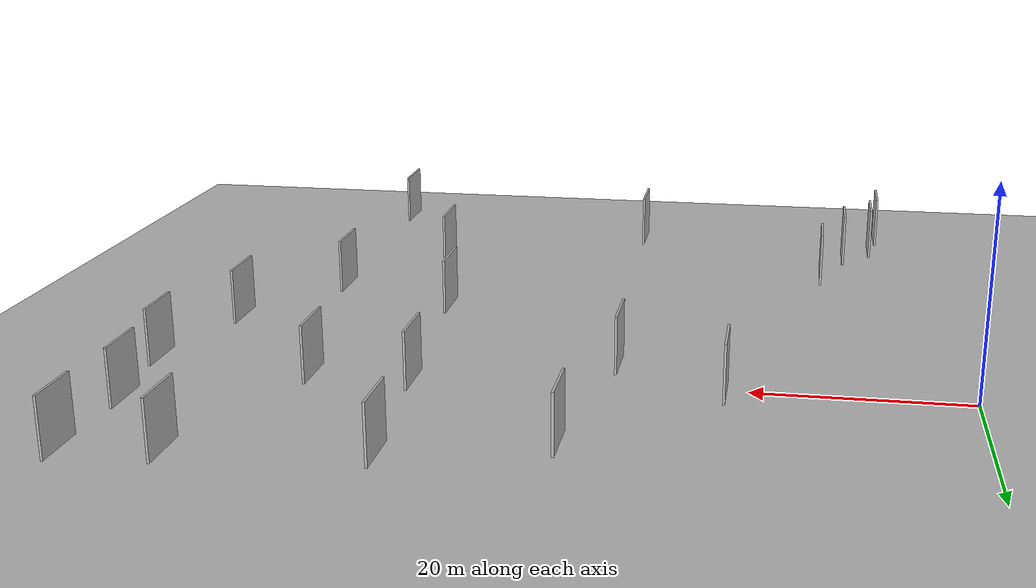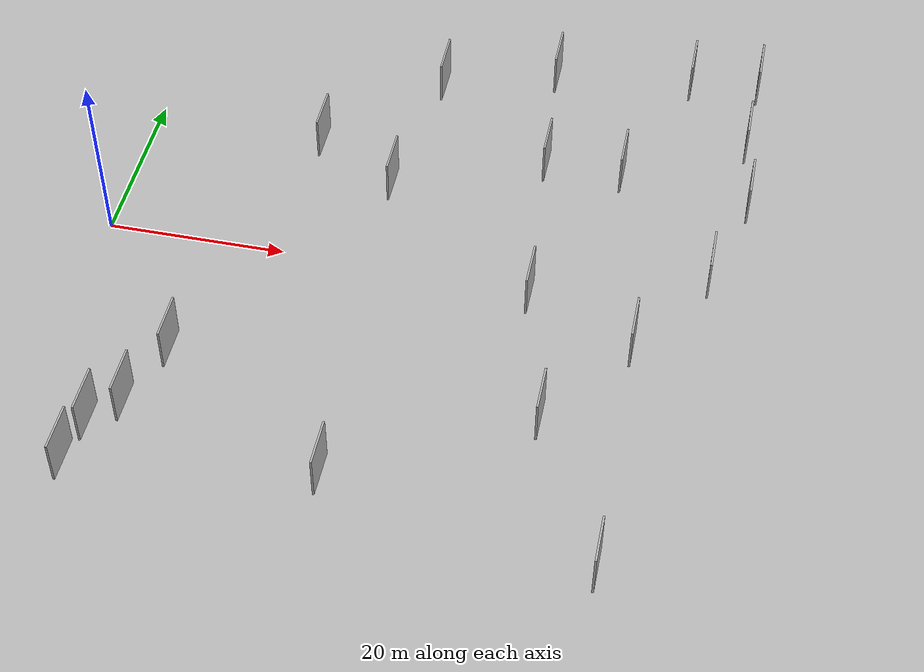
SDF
<?xml version="1.0" encoding="utf-8"?>

<sdf version="1.6">

   <world name="default">

      <gui fullscreen="0">

         <camera name="user_camera">

            <pose>-15 0 4.57585 0 0 0</pose>

            <view_controller>orbit</view_controller>

         </camera>

      </gui>

      <scene>

         <sky>

           <clouds>

             <speed>12</speed>

           </clouds>

         </sky>

         <ambient>0.4 0.4 0.4 1</ambient>

         <background>0.7 0.7 0.7 1</background>

         <shadows>1</shadows>

      </scene>

      <gravity>0 0 -9.8066</gravity>

      <magnetic_field>6e-06 2.3e-05 -4.2e-05</magnetic_field>

      <physics default="0" name="default_physics" type="ode">

         <ode>

            <solver>

               <type>quick</type>

               <iters>10</iters>

               <sor>1.0</sor>

               <use_dynamic_moi_rescaling>0</use_dynamic_moi_rescaling>

            </solver>

            <constraints>

               <cfm>0</cfm>

               <erp>0.2</erp>

               <contact_max_correcting_vel>100</contact_max_correcting_vel>

               <contact_surface_layer>0.001</contact_surface_layer>

            </constraints>

         </ode>

         <max_step_size>0.004</max_step_size>

         <real_time_factor>1</real_time_factor>

         <real_time_update_rate>250</real_time_update_rate>

      </physics>

      <light name="sun" type="directional">

         <cast_shadows>1</cast_shadows>

         <pose>0 0 10 0 0 0</pose>

         <diffuse>0.8 0.8 0.8 1</diffuse>

         <specular>0.2 0.2 0.2 1</specular>

         <attenuation>

            <range>1000</range>

            <constant>0.9</constant>

            <linear>0.01</linear>

            <quadratic>0.001</quadratic>

         </attenuation>

         <direction>-0.5 0.1 -0.9</direction>

      </light>

      <include>

         <name>ground_plane_1</name>

         <uri>model://HANNAS_ground_plane</uri>

         <pose>0 0 0  0 0 0</pose>

      </include>

      <include>

         <name>ground_plane_2</name>

         <uri>model://HANNAS_ground_plane</uri>

         <pose>100 0 0  0 0 0</pose>

      </include>

      <model name="HANNAS_wall_1">

         <static>1</static>

         <pose frame="">60.2426 -37.7055 5.0 0.000000 0.000000 1.570796</pose>

         <link name="link">

            <pose frame="">0 0 2.50 0 0 0</pose>

            <collision name="collision">

               <geometry>

                  <box>

                     <size>5.00 0.2 5.00</size>

                  </box>

               </geometry>

               <max_contacts>10</max_contacts>

               <surface>

                  <contact>

                     <ode/>

                  </contact>

                  <bounce/>

                  <friction>

                     <torsional>

                        <ode/>

                     </torsional>

                     <ode/>

                  </friction>

               </surface>

            </collision>

            <visual name="visual">

               <cast_shadows>0</cast_shadows>

               <geometry>

                  <box>

                     <size>5.00 0.2 5.00</size>

                  </box>

               </geometry>

               <material>

                  <script>

                     <uri>model://HANNAS_wall/materials/scripts</uri>

                     <uri>model://HANNAS_wall/materials/textures</uri>

                     <name>vrc/HANNAS_wall</name>

                  </script>

               </material>

            </visual>

            <self_collide>0</self_collide>

            <enable_wind>0</enable_wind>

            <kinematic>0</kinematic>

         </link>

      </model>

      <model name="HANNAS_wall_2">

         <static>1</static>

         <pose frame="">52.1863 -21.4854 5.0 0.000000 0.000000 1.570796</pose>

         <link name="link">

            <pose frame="">0 0 2.50 0 0 0</pose>

            <collision name="collision">

               <geometry>

                  <box>

                     <size>5.00 0.2 5.00</size>

                  </box>

               </geometry>

               <max_contacts>10</max_contacts>

               <surface>

                  <contact>

                     <ode/>

                  </contact>

                  <bounce/>

                  <friction>

                     <torsional>

                        <ode/>

                     </torsional>

                     <ode/>

                  </friction>

               </surface>

            </collision>

            <visual name="visual">

               <cast_shadows>0</cast_shadows>

               <geometry>

                  <box>

                     <size>5.00 0.2 5.00</size>

                  </box>

               </geometry>

               <material>

                  <script>

                     <uri>model://HANNAS_wall/materials/scripts</uri>

                     <uri>model://HANNAS_wall/materials/textures</uri>

                     <name>vrc/HANNAS_wall</name>

                  </script>

               </material>

            </visual>

            <self_collide>0</self_collide>

            <enable_wind>0</enable_wind>

            <kinematic>0</kinematic>

         </link>

      </model>

      <model name="HANNAS_wall_3">

         <static>1</static>

         <pose frame="">55.3209 14.2574 5.0 0.000000 0.000000 1.570796</pose>

         <link name="link">

            <pose frame="">0 0 2.50 0 0 0</pose>

            <collision name="collision">

               <geometry>

                  <box>

                     <size>5.00 0.2 5.00</size>

                  </box>

               </geometry>

               <max_contacts>10</max_contacts>

               <surface>

                  <contact>

                     <ode/>

                  </contact>

                  <bounce/>

                  <friction>

                     <torsional>

                        <ode/>

                     </torsional>

                     <ode/>

                  </friction>

               </surface>

            </collision>

            <visual name="visual">

               <cast_shadows>0</cast_shadows>

               <geometry>

                  <box>

                     <size>5.00 0.2 5.00</size>

                  </box>

               </geometry>

               <material>

                  <script>

                     <uri>model://HANNAS_wall/materials/scripts</uri>

                     <uri>model://HANNAS_wall/materials/textures</uri>

                     <name>vrc/HANNAS_wall</name>

                  </script>

               </material>

            </visual>

            <self_collide>0</self_collide>

            <enable_wind>0</enable_wind>

            <kinematic>0</kinematic>

         </link>

      </model>

      <model name="HANNAS_wall_4">

         <static>1</static>

         <pose frame="">13.8937 -19.9973 5.0 0.000000 0.000000 1.570796</pose>

         <link name="link">

            <pose frame="">0 0 2.50 0 0 0</pose>

            <collision name="collision">

               <geometry>

                  <box>

                     <size>5.00 0.2 5.00</size>

                  </box>

               </geometry>

               <max_contacts>10</max_contacts>

               <surface>

                  <contact>

                     <ode/>

                  </contact>

                  <bounce/>

                  <friction>

                     <torsional>

                        <ode/>

                     </torsional>

                     <ode/>

                  </friction>

               </surface>

            </collision>

            <visual name="visual">

               <cast_shadows>0</cast_shadows>

               <geometry>

                  <box>

                     <size>5.00 0.2 5.00</size>

                  </box>

               </geometry>

               <material>

                  <script>

                     <uri>model://HANNAS_wall/materials/scripts</uri>

                     <uri>model://HANNAS_wall/materials/textures</uri>

                     <name>vrc/HANNAS_wall</name>

                  </script>

               </material>

            </visual>

            <self_collide>0</self_collide>

            <enable_wind>0</enable_wind>

            <kinematic>0</kinematic>

         </link>

      </model>

      <model name="HANNAS_wall_5">

         <static>1</static>

         <pose frame="">68.3502 21.7502 5.0 0.000000 0.000000 1.570796</pose>

         <link name="link">

            <pose frame="">0 0 2.50 0 0 0</pose>

            <collision name="collision">

               <geometry>

                  <box>

                     <size>5.00 0.2 5.00</size>

                  </box>

               </geometry>

               <max_contacts>10</max_contacts>

               <surface>

                  <contact>

                     <ode/>

                  </contact>

                  <bounce/>

                  <friction>

                     <torsional>

                        <ode/>

                     </torsional>

                     <ode/>

                  </friction>

               </surface>

            </collision>

            <visual name="visual">

               <cast_shadows>0</cast_shadows>

               <geometry>

                  <box>

                     <size>5.00 0.2 5.00</size>

                  </box>

               </geometry>

               <material>

                  <script>

                     <uri>model://HANNAS_wall/materials/scripts</uri>

                     <uri>model://HANNAS_wall/materials/textures</uri>

                     <name>vrc/HANNAS_wall</name>

                  </script>

               </material>

            </visual>

            <self_collide>0</self_collide>

            <enable_wind>0</enable_wind>

            <kinematic>0</kinematic>

         </link>

      </model>

      <model name="HANNAS_wall_6">

         <static>1</static>

         <pose frame="">59.8071 -10.4282 5.0 0.000000 0.000000 1.570796</pose>

         <link name="link">

            <pose frame="">0 0 2.50 0 0 0</pose>

            <collision name="collision">

               <geometry>

                  <box>

                     <size>5.00 0.2 5.00</size>

                  </box>

               </geometry>

               <max_contacts>10</max_contacts>

               <surface>

                  <contact>

                     <ode/>

                  </contact>

                  <bounce/>

                  <friction>

                     <torsional>

                        <ode/>

                     </torsional>

                     <ode/>

                  </friction>

               </surface>

            </collision>

            <visual name="visual">

               <cast_shadows>0</cast_shadows>

               <geometry>

                  <box>

                     <size>5.00 0.2 5.00</size>

                  </box>

               </geometry>

               <material>

                  <script>

                     <uri>model://HANNAS_wall/materials/scripts</uri>

                     <uri>model://HANNAS_wall/materials/textures</uri>

                     <name>vrc/HANNAS_wall</name>

                  </script>

               </material>

            </visual>

            <self_collide>0</self_collide>

            <enable_wind>0</enable_wind>

            <kinematic>0</kinematic>

         </link>

      </model>

      <model name="HANNAS_wall_7">

         <static>1</static>

         <pose frame="">48.3433 -5.4660 5.0 0.000000 0.000000 1.570796</pose>

         <link name="link">

            <pose frame="">0 0 2.50 0 0 0</pose>

            <collision name="collision">

               <geometry>

                  <box>

                     <size>5.00 0.2 5.00</size>

                  </box>

               </geometry>

               <max_contacts>10</max_contacts>

               <surface>

                  <contact>

                     <ode/>

                  </contact>

                  <bounce/>

                  <friction>

                     <torsional>

                        <ode/>

                     </torsional>

                     <ode/>

                  </friction>

               </surface>

            </collision>

            <visual name="visual">

               <cast_shadows>0</cast_shadows>

               <geometry>

                  <box>

                     <size>5.00 0.2 5.00</size>

                  </box>

               </geometry>

               <material>

                  <script>

                     <uri>model://HANNAS_wall/materials/scripts</uri>

                     <uri>model://HANNAS_wall/materials/textures</uri>

                     <name>vrc/HANNAS_wall</name>

                  </script>

               </material>

            </visual>

            <self_collide>0</self_collide>

            <enable_wind>0</enable_wind>

            <kinematic>0</kinematic>

         </link>

      </model>

      <model name="HANNAS_wall_8">

         <static>1</static>

         <pose frame="">46.8142 14.3289 5.0 0.000000 0.000000 1.570796</pose>

         <link name="link">

            <pose frame="">0 0 2.50 0 0 0</pose>

            <collision name="collision">

               <geometry>

                  <box>

                     <size>5.00 0.2 5.00</size>

                  </box>

               </geometry>

               <max_contacts>10</max_contacts>

               <surface>

                  <contact>

                     <ode/>

                  </contact>

                  <bounce/>

                  <friction>

                     <torsional>

                        <ode/>

                     </torsional>

                     <ode/>

                  </friction>

               </surface>

            </collision>

            <visual name="visual">

               <cast_shadows>0</cast_shadows>

               <geometry>

                  <box>

                     <size>5.00 0.2 5.00</size>

                  </box>

               </geometry>

               <material>

                  <script>

                     <uri>model://HANNAS_wall/materials/scripts</uri>

                     <uri>model://HANNAS_wall/materials/textures</uri>

                     <name>vrc/HANNAS_wall</name>

                  </script>

               </material>

            </visual>

            <self_collide>0</self_collide>

            <enable_wind>0</enable_wind>

            <kinematic>0</kinematic>

         </link>

      </model>

      <model name="HANNAS_wall_9">

         <static>1</static>

         <pose frame="">66.4817 0.5158 5.0 0.000000 0.000000 1.570796</pose>

         <link name="link">

            <pose frame="">0 0 2.50 0 0 0</pose>

            <collision name="collision">

               <geometry>

                  <box>

                     <size>5.00 0.2 5.00</size>

                  </box>

               </geometry>

               <max_contacts>10</max_contacts>

               <surface>

                  <contact>

                     <ode/>

                  </contact>

                  <bounce/>

                  <friction>

                     <torsional>

                        <ode/>

                     </torsional>

                     <ode/>

                  </friction>

               </surface>

            </collision>

            <visual name="visual">

               <cast_shadows>0</cast_shadows>

               <geometry>

                  <box>

                     <size>5.00 0.2 5.00</size>

                  </box>

               </geometry>

               <material>

                  <script>

                     <uri>model://HANNAS_wall/materials/scripts</uri>

                     <uri>model://HANNAS_wall/materials/textures</uri>

                     <name>vrc/HANNAS_wall</name>

                  </script>

               </material>

            </visual>

            <self_collide>0</self_collide>

            <enable_wind>0</enable_wind>

            <kinematic>0</kinematic>

         </link>

      </model>

      <model name="HANNAS_wall_10">

         <static>1</static>

         <pose frame="">32.6975 -32.2863 5.0 0.000000 0.000000 1.570796</pose>

         <link name="link">

            <pose frame="">0 0 2.50 0 0 0</pose>

            <collision name="collision">

               <geometry>

                  <box>

                     <size>5.00 0.2 5.00</size>

                  </box>

               </geometry>

               <max_contacts>10</max_contacts>

               <surface>

                  <contact>

                     <ode/>

                  </contact>

                  <bounce/>

                  <friction>

                     <torsional>

                        <ode/>

                     </torsional>

                     <ode/>

                  </friction>

               </surface>

            </collision>

            <visual name="visual">

               <cast_shadows>0</cast_shadows>

               <geometry>

                  <box>

                     <size>5.00 0.2 5.00</size>

                  </box>

               </geometry>

               <material>

                  <script>

                     <uri>model://HANNAS_wall/materials/scripts</uri>

                     <uri>model://HANNAS_wall/materials/textures</uri>

                     <name>vrc/HANNAS_wall</name>

                  </script>

               </material>

            </visual>

            <self_collide>0</self_collide>

            <enable_wind>0</enable_wind>

            <kinematic>0</kinematic>

         </link>

      </model>

      <model name="HANNAS_wall_11">

         <static>1</static>

         <pose frame="">33.0068 25.3615 5.0 0.000000 0.000000 1.570796</pose>

         <link name="link">

            <pose frame="">0 0 2.50 0 0 0</pose>

            <collision name="collision">

               <geometry>

                  <box>

                     <size>5.00 0.2 5.00</size>

                  </box>

               </geometry>

               <max_contacts>10</max_contacts>

               <surface>

                  <contact>

                     <ode/>

                  </contact>

                  <bounce/>

                  <friction>

                     <torsional>

                        <ode/>

                     </torsional>

                     <ode/>

                  </friction>

               </surface>

            </collision>

            <visual name="visual">

               <cast_shadows>0</cast_shadows>

               <geometry>

                  <box>

                     <size>5.00 0.2 5.00</size>

                  </box>

               </geometry>

               <material>

                  <script>

                     <uri>model://HANNAS_wall/materials/scripts</uri>

                     <uri>model://HANNAS_wall/materials/textures</uri>

                     <name>vrc/HANNAS_wall</name>

                  </script>

               </material>

            </visual>

            <self_collide>0</self_collide>

            <enable_wind>0</enable_wind>

            <kinematic>0</kinematic>

         </link>

      </model>

      <model name="HANNAS_wall_12">

         <static>1</static>

         <pose frame="">30.6661 8.0008 5.0 0.000000 0.000000 1.570796</pose>

         <link name="link">

            <pose frame="">0 0 2.50 0 0 0</pose>

            <collision name="collision">

               <geometry>

                  <box>

                     <size>5.00 0.2 5.00</size>

                  </box>

               </geometry>

               <max_contacts>10</max_contacts>

               <surface>

                  <contact>

                     <ode/>

                  </contact>

                  <bounce/>

                  <friction>

                     <torsional>

                        <ode/>

                     </torsional>

                     <ode/>

                  </friction>

               </surface>

            </collision>

            <visual name="visual">

               <cast_shadows>0</cast_shadows>

               <geometry>

                  <box>

                     <size>5.00 0.2 5.00</size>

                  </box>

               </geometry>

               <material>

                  <script>

                     <uri>model://HANNAS_wall/materials/scripts</uri>

                     <uri>model://HANNAS_wall/materials/textures</uri>

                     <name>vrc/HANNAS_wall</name>

                  </script>

               </material>

            </visual>

            <self_collide>0</self_collide>

            <enable_wind>0</enable_wind>

            <kinematic>0</kinematic>

         </link>

      </model>

      <model name="HANNAS_wall_13">

         <static>1</static>

         <pose frame="">8.8074 -30.6146 5.0 0.000000 0.000000 1.570796</pose>

         <link name="link">

            <pose frame="">0 0 2.50 0 0 0</pose>

            <collision name="collision">

               <geometry>

                  <box>

                     <size>5.00 0.2 5.00</size>

                  </box>

               </geometry>

               <max_contacts>10</max_contacts>

               <surface>

                  <contact>

                     <ode/>

                  </contact>

                  <bounce/>

                  <friction>

                     <torsional>

                        <ode/>

                     </torsional>

                     <ode/>

                  </friction>

               </surface>

            </collision>

            <visual name="visual">

               <cast_shadows>0</cast_shadows>

               <geometry>

                  <box>

                     <size>5.00 0.2 5.00</size>

                  </box>

               </geometry>

               <material>

                  <script>

                     <uri>model://HANNAS_wall/materials/scripts</uri>

                     <uri>model://HANNAS_wall/materials/textures</uri>

                     <name>vrc/HANNAS_wall</name>

                  </script>

               </material>

            </visual>

            <self_collide>0</self_collide>

            <enable_wind>0</enable_wind>

            <kinematic>0</kinematic>

         </link>

      </model>

      <model name="HANNAS_wall_14">

         <static>1</static>

         <pose frame="">69.4288 12.3104 5.0 0.000000 0.000000 1.570796</pose>

         <link name="link">

            <pose frame="">0 0 2.50 0 0 0</pose>

            <collision name="collision">

               <geometry>

                  <box>

                     <size>5.00 0.2 5.00</size>

                  </box>

               </geometry>

               <max_contacts>10</max_contacts>

               <surface>

                  <contact>

                     <ode/>

                  </contact>

                  <bounce/>

                  <friction>

                     <torsional>

                        <ode/>

                     </torsional>

                     <ode/>

                  </friction>

               </surface>

            </collision>

            <visual name="visual">

               <cast_shadows>0</cast_shadows>

               <geometry>

                  <box>

                     <size>5.00 0.2 5.00</size>

                  </box>

               </geometry>

               <material>

                  <script>

                     <uri>model://HANNAS_wall/materials/scripts</uri>

                     <uri>model://HANNAS_wall/materials/textures</uri>

                     <name>vrc/HANNAS_wall</name>

                  </script>

               </material>

            </visual>

            <self_collide>0</self_collide>

            <enable_wind>0</enable_wind>

            <kinematic>0</kinematic>

         </link>

      </model>

      <model name="HANNAS_wall_15">

         <static>1</static>

         <pose frame="">45.6239 29.3323 5.0 0.000000 0.000000 1.570796</pose>

         <link name="link">

            <pose frame="">0 0 2.50 0 0 0</pose>

            <collision name="collision">

               <geometry>

                  <box>

                     <size>5.00 0.2 5.00</size>

                  </box>

               </geometry>

               <max_contacts>10</max_contacts>

               <surface>

                  <contact>

                     <ode/>

                  </contact>

                  <bounce/>

                  <friction>

                     <torsional>

                        <ode/>

                     </torsional>

                     <ode/>

                  </friction>

               </surface>

            </collision>

            <visual name="visual">

               <cast_shadows>0</cast_shadows>

               <geometry>

                  <box>

                     <size>5.00 0.2 5.00</size>

                  </box>

               </geometry>

               <material>

                  <script>

                     <uri>model://HANNAS_wall/materials/scripts</uri>

                     <uri>model://HANNAS_wall/materials/textures</uri>

                     <name>vrc/HANNAS_wall</name>

                  </script>

               </material>

            </visual>

            <self_collide>0</self_collide>

            <enable_wind>0</enable_wind>

            <kinematic>0</kinematic>

         </link>

      </model>

      <model name="HANNAS_wall_16">

         <static>1</static>

         <pose frame="">21.5036 13.2785 5.0 0.000000 0.000000 1.570796</pose>

         <link name="link">

            <pose frame="">0 0 2.50 0 0 0</pose>

            <collision name="collision">

               <geometry>

                  <box>

                     <size>5.00 0.2 5.00</size>

                  </box>

               </geometry>

               <max_contacts>10</max_contacts>

               <surface>

                  <contact>

                     <ode/>

                  </contact>

                  <bounce/>

                  <friction>

                     <torsional>

                        <ode/>

                     </torsional>

                     <ode/>

                  </friction>

               </surface>

            </collision>

            <visual name="visual">

               <cast_shadows>0</cast_shadows>

               <geometry>

                  <box>

                     <size>5.00 0.2 5.00</size>

                  </box>

               </geometry>

               <material>

                  <script>

                     <uri>model://HANNAS_wall/materials/scripts</uri>

                     <uri>model://HANNAS_wall/materials/textures</uri>

                     <name>vrc/HANNAS_wall</name>

                  </script>

               </material>

            </visual>

            <self_collide>0</self_collide>

            <enable_wind>0</enable_wind>

            <kinematic>0</kinematic>

         </link>

      </model>

      <model name="HANNAS_wall_17">

         <static>1</static>

         <pose frame="">8.0036 -35.6105 5.0 0.000000 0.000000 1.570796</pose>

         <link name="link">

            <pose frame="">0 0 2.50 0 0 0</pose>

            <collision name="collision">

               <geometry>

                  <box>

                     <size>5.00 0.2 5.00</size>

                  </box>

               </geometry>

               <max_contacts>10</max_contacts>

               <surface>

                  <contact>

                     <ode/>

                  </contact>

                  <bounce/>

                  <friction>

                     <torsional>

                        <ode/>

                     </torsional>

                     <ode/>

                  </friction>

               </surface>

            </collision>

            <visual name="visual">

               <cast_shadows>0</cast_shadows>

               <geometry>

                  <box>

                     <size>5.00 0.2 5.00</size>

                  </box>

               </geometry>

               <material>

                  <script>

                     <uri>model://HANNAS_wall/materials/scripts</uri>

                     <uri>model://HANNAS_wall/materials/textures</uri>

                     <name>vrc/HANNAS_wall</name>

                  </script>

               </material>

            </visual>

            <self_collide>0</self_collide>

            <enable_wind>0</enable_wind>

            <kinematic>0</kinematic>

         </link>

      </model>

      <model name="HANNAS_wall_18">

         <static>1</static>

         <pose frame="">61.0865 31.0455 5.0 0.000000 0.000000 1.570796</pose>

         <link name="link">

            <pose frame="">0 0 2.50 0 0 0</pose>

            <collision name="collision">

               <geometry>

                  <box>

                     <size>5.00 0.2 5.00</size>

                  </box>

               </geometry>

               <max_contacts>10</max_contacts>

               <surface>

                  <contact>

                     <ode/>

                  </contact>

                  <bounce/>

                  <friction>

                     <torsional>

                        <ode/>

                     </torsional>

                     <ode/>

                  </friction>

               </surface>

            </collision>

            <visual name="visual">

               <cast_shadows>0</cast_shadows>

               <geometry>

                  <box>

                     <size>5.00 0.2 5.00</size>

                  </box>

               </geometry>

               <material>

                  <script>

                     <uri>model://HANNAS_wall/materials/scripts</uri>

                     <uri>model://HANNAS_wall/materials/textures</uri>

                     <name>vrc/HANNAS_wall</name>

                  </script>

               </material>

            </visual>

            <self_collide>0</self_collide>

            <enable_wind>0</enable_wind>

            <kinematic>0</kinematic>

         </link>

      </model>

      <model name="HANNAS_wall_19">

         <static>1</static>

         <pose frame="">68.7527 31.8563 5.0 0.000000 0.000000 1.570796</pose>

         <link name="link">

            <pose frame="">0 0 2.50 0 0 0</pose>

            <collision name="collision">

               <geometry>

                  <box>

                     <size>5.00 0.2 5.00</size>

                  </box>

               </geometry>

               <max_contacts>10</max_contacts>

               <surface>

                  <contact>

                     <ode/>

                  </contact>

                  <bounce/>

                  <friction>

                     <torsional>

                        <ode/>

                     </torsional>

                     <ode/>

                  </friction>

               </surface>

            </collision>

            <visual name="visual">

               <cast_shadows>0</cast_shadows>

               <geometry>

                  <box>

                     <size>5.00 0.2 5.00</size>

                  </box>

               </geometry>

               <material>

                  <script>

                     <uri>model://HANNAS_wall/materials/scripts</uri>

                     <uri>model://HANNAS_wall/materials/textures</uri>

                     <name>vrc/HANNAS_wall</name>

                  </script>

               </material>

            </visual>

            <self_collide>0</self_collide>

            <enable_wind>0</enable_wind>

            <kinematic>0</kinematic>

         </link>

      </model>

      <model name="HANNAS_wall_20">

         <static>1</static>

         <pose frame="">11.5629 -27.5949 5.0 0.000000 0.000000 1.570796</pose>

         <link name="link">

            <pose frame="">0 0 2.50 0 0 0</pose>

            <collision name="collision">

               <geometry>

                  <box>

                     <size>5.00 0.2 5.00</size>

                  </box>

               </geometry>

               <max_contacts>10</max_contacts>

               <surface>

                  <contact>

                     <ode/>

                  </contact>

                  <bounce/>

                  <friction>

                     <torsional>

                        <ode/>

                     </torsional>

                     <ode/>

                  </friction>

               </surface>

            </collision>

            <visual name="visual">

               <cast_shadows>0</cast_shadows>

               <geometry>

                  <box>

                     <size>5.00 0.2 5.00</size>

                  </box>

               </geometry>

               <material>

                  <script>

                     <uri>model://HANNAS_wall/materials/scripts</uri>

                     <uri>model://HANNAS_wall/materials/textures</uri>

                     <name>vrc/HANNAS_wall</name>

                  </script>

               </material>

            </visual>

            <self_collide>0</self_collide>

            <enable_wind>0</enable_wind>

            <kinematic>0</kinematic>

         </link>

      </model>

   </world>

</sdf>

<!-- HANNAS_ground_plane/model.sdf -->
<sdf version="1.4">
<model name="HANNAS_ground_plane">
  <static>true</static>
    <link name="link">
      <collision name="collision">
        <geometry>
          <plane>
            <normal>0 0 1</normal>
            <size>1000 1000</size>
          </plane>
        </geometry>
        <surface>
          <friction>
            <ode>
              <mu>100</mu>
              <mu2>50</mu2>
            </ode>
          </friction>
        </surface>
      </collision>
      <visual name="visual">
        <cast_shadows>false</cast_shadows>
        <geometry>
          <plane>
            <normal>0 0 1</normal>
            <size>1000 1000</size>
          </plane>
        </geometry>
        <material>
          <script>
            <uri>model://HANNAS_ground_plane/materials/scripts/HANNAS_ground_plane.material</uri>
	    <uri>model://HANNAS_ground_plane/materials/textures</uri>
            <name>HANNASGroundPlane/Image</name>
          </script>
        </material>
      </visual>
    </link>
  </model>
</sdf>
